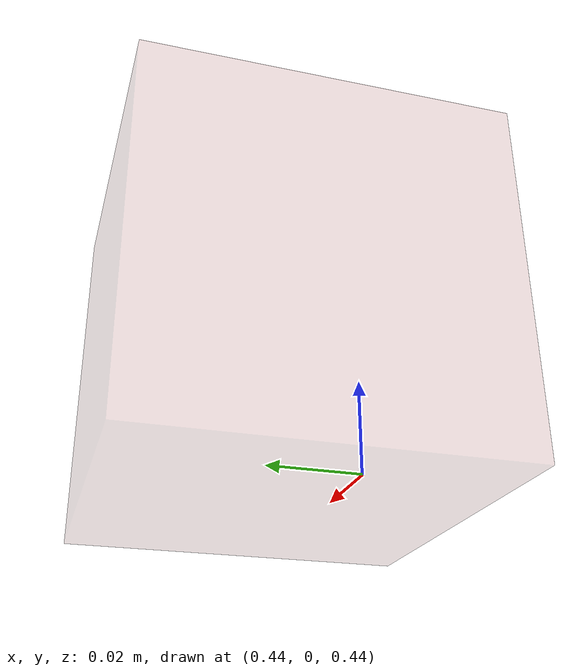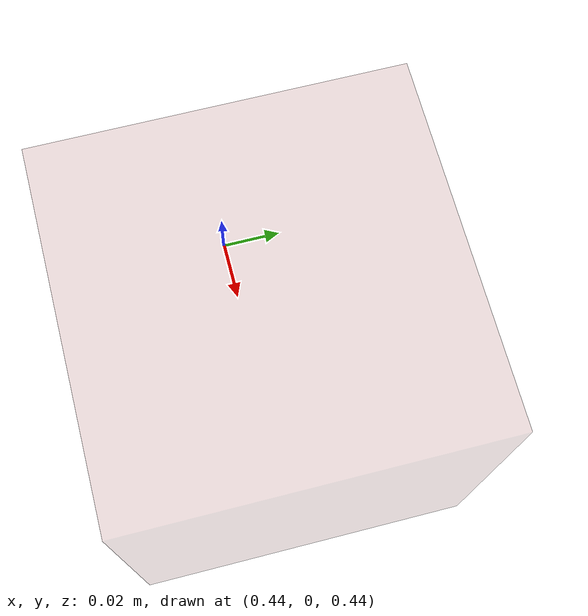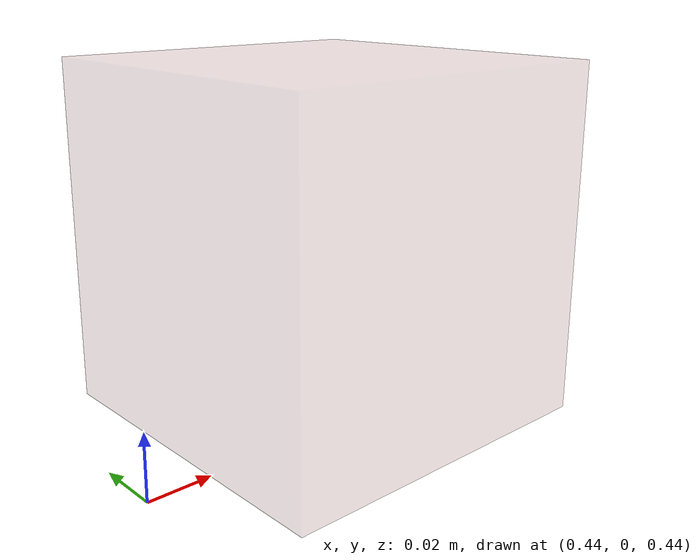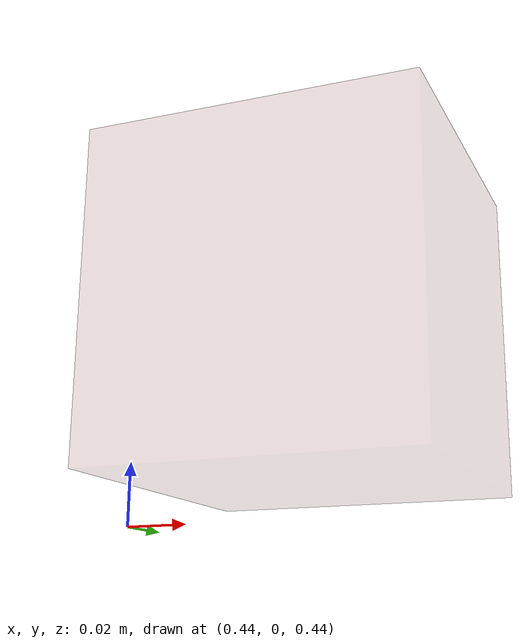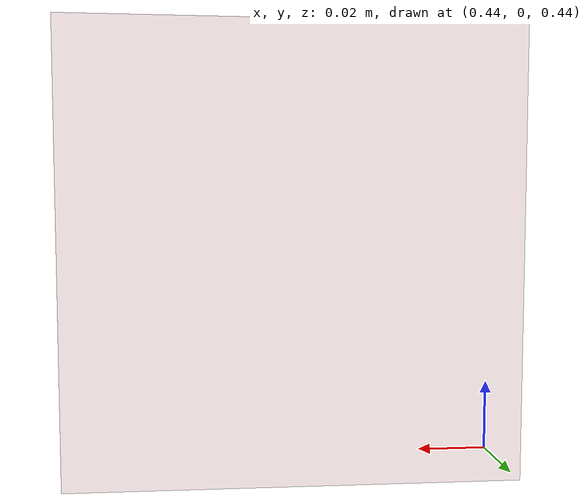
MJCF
<mujoco model="targets">

<worldbody>
    <body name="left_target" pos="0.5 0 .5" quat="0 1 0 0" mocap="true">
      <geom type="box" size=".05 .05 .05" contype="0" conaffinity="0" rgba=".6 .3 .3 .2"/>
    </body>

    <body name="right_target" pos="0.5 0 .5" quat="0 1 0 0" mocap="true">
      <geom type="box" size=".05 .05 .05" contype="0" conaffinity="0" rgba=".6 .3 .3 .2"/>
    </body>
</worldbody>

</mujoco>
